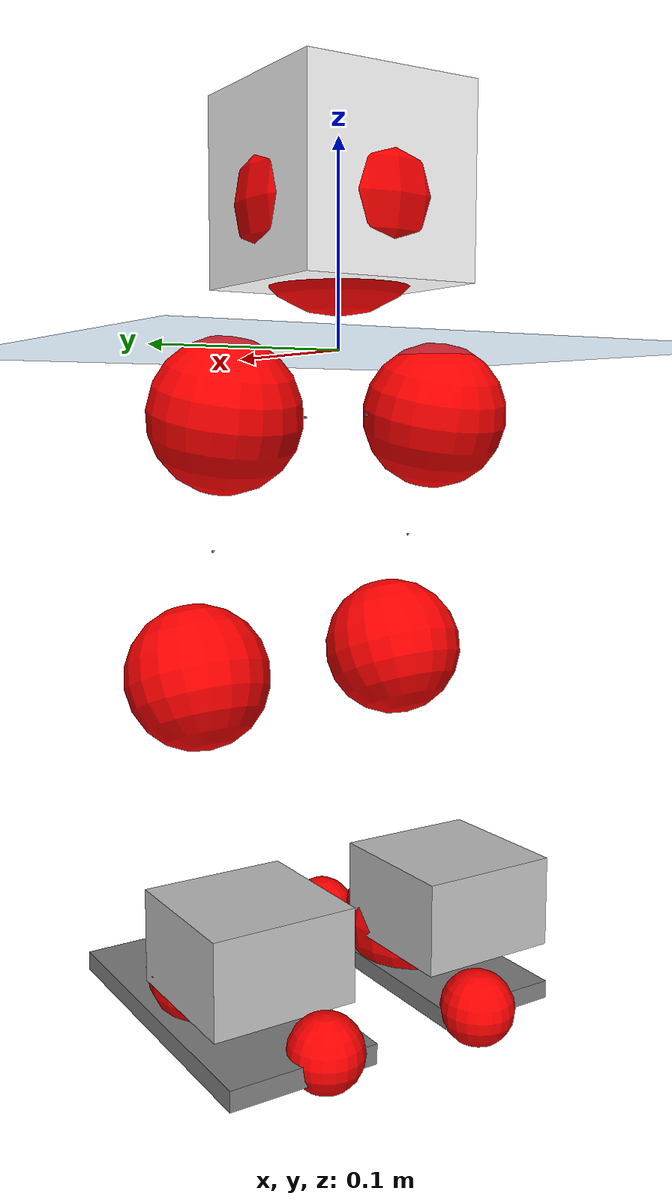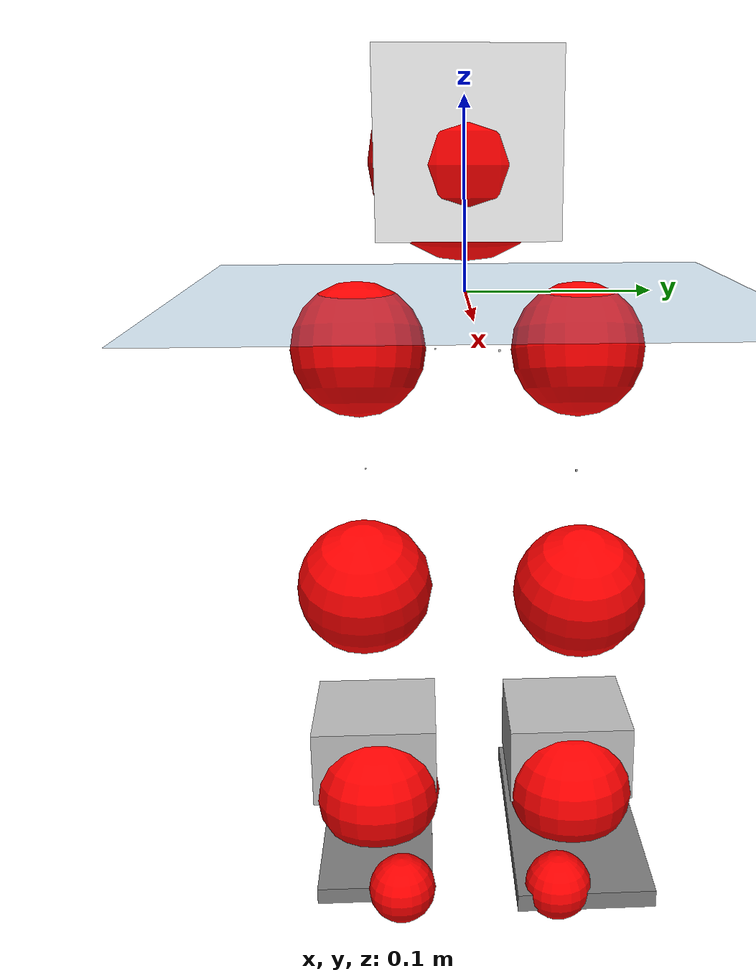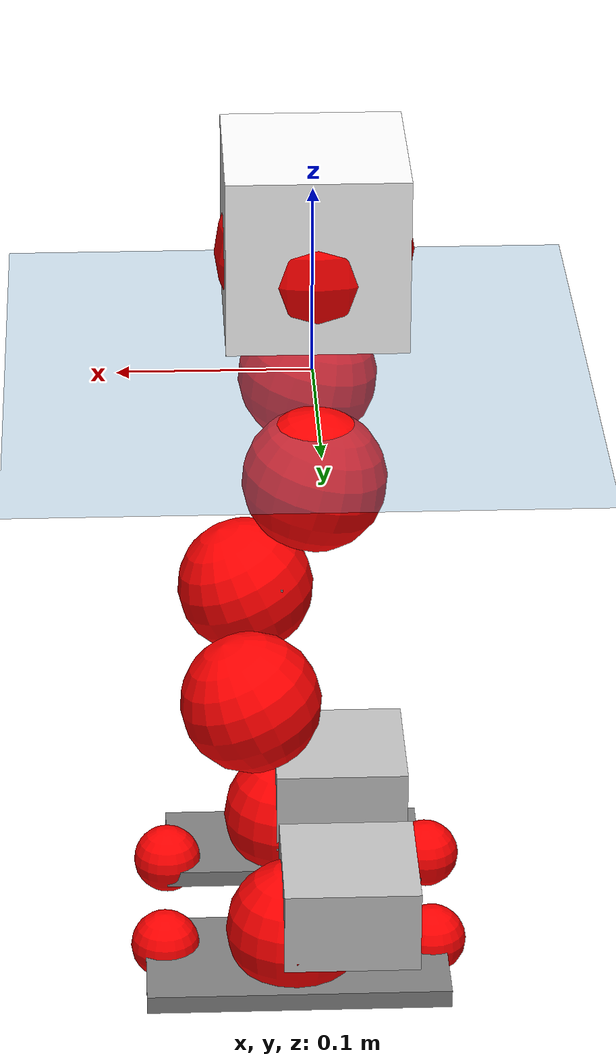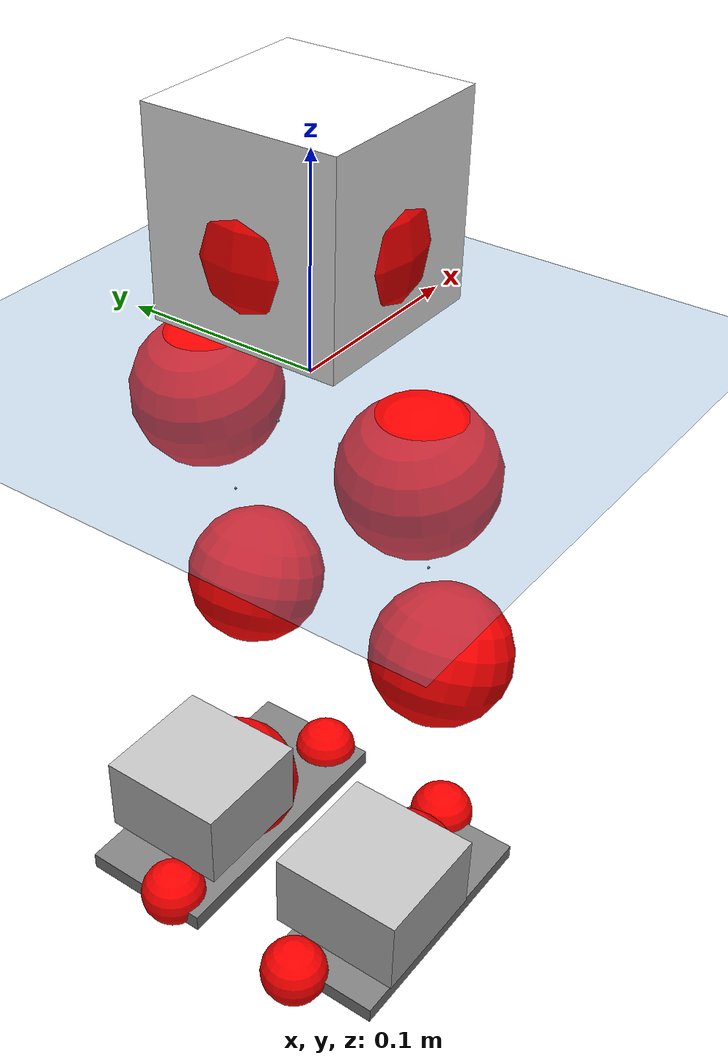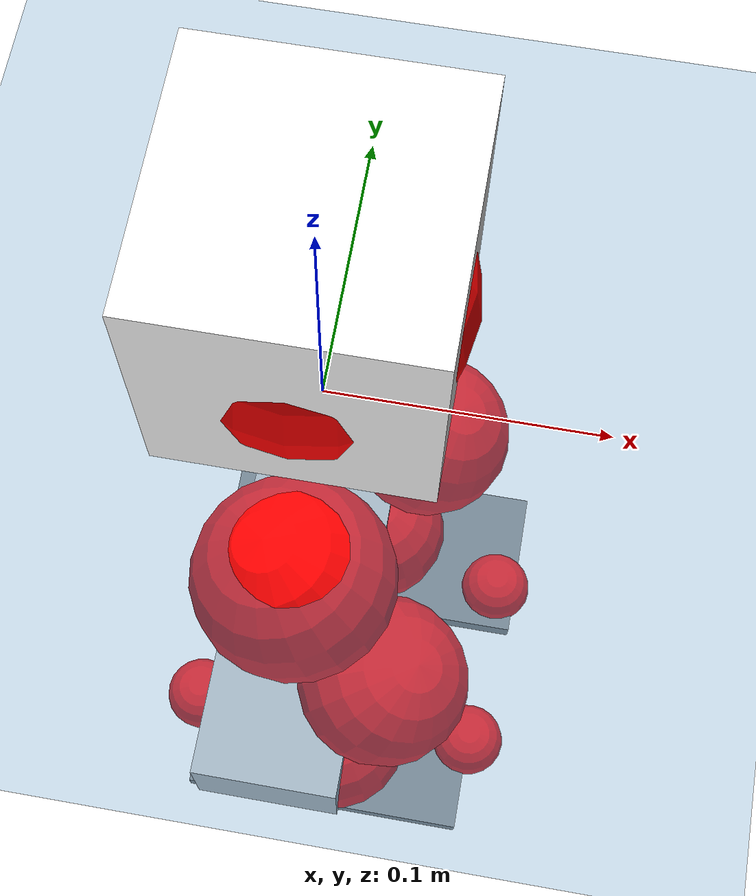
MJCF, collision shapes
<mujoco model="pi_12dof_release_v1">
  <compiler angle="radian" assetdir="assets" balanceinertia="true" inertiafromgeom="false"/>

  <option timestep="0.005" density="1.2" viscosity="2e-05"/>

  <size nkey="1"/>

  <visual>
    <quality shadowsize="8192"/>
    <map shadowclip="0.5"/>
  </visual>

  <default>
    <default class="/">
      <joint armature="0.01" damping="0.01" frictionloss="0.01"/>
      <geom contype="0" conaffinity="0" group="1" solref="-1000 -80"/>
      <site size="0.01 0.005 0.005" group="5"/>
      <general forcelimited="true" biastype="affine" gainprm="20" biasprm="0 -20 -0.5"/>
      <default class="foot">
        <geom size="0.0845 0.036 0.005" type="box" condim="6" group="4" priority="1" friction="0.9 0.2 0.2" solimp="0.015 1 0.005"/>
      </default>
      <default class="reward_collision_sphere">
        <geom group="5" rgba="1 0 0 1"/>
      </default>
    </default>
  </default>

  <asset>
    <texture type="skybox" colorspace="auto" name="//unnamed_texture_0" builtin="gradient" rgb1="0.95 0.95 0.95" rgb2="0.95 0.95 0.95" width="100" height="600"/>
    <texture type="2d" colorspace="auto" name="texplane" builtin="checker" rgb1="0.345 0.575 0.748" rgb2="0.345 0.575 0.748" markrgb="1 1 1" width="512" height="512"/>
    <material name="MatPlane" class="/" texture="texplane" texuniform="true" texrepeat="2 2" specular="0.9"/>
    <mesh name="baselink_1" class="/" file="baselink_1.STL"/>
    <mesh name="r_hip_pitch_link" class="/" file="r_hip_pitch_link.STL"/>
    <mesh name="r_hip_roll_link" class="/" file="r_hip_roll_link.STL"/>
    <mesh name="r_thigh_link" class="/" file="r_thigh_link.STL"/>
    <mesh name="r_calf_link" class="/" file="r_calf_link.STL"/>
    <mesh name="r_ankle_pitch_link" class="/" file="r_ankle_pitch_link.STL"/>
    <mesh name="r_ankle_roll_link" class="/" file="r_ankle_roll_link.STL"/>
    <mesh name="l_hip_pitch_link" class="/" file="l_hip_pitch_link.STL"/>
    <mesh name="l_hip_roll_link" class="/" file="l_hip_roll_link.STL"/>
    <mesh name="l_thigh_link" class="/" file="l_thigh_link.STL"/>
    <mesh name="l_calf_link" class="/" file="l_calf_link.STL"/>
    <mesh name="l_ankle_pitch_link" class="/" file="l_ankle_pitch_link.STL"/>
    <mesh name="l_ankle_roll_link" class="/" file="l_ankle_roll_link.STL"/>
  </asset>

  <worldbody>
    <geom name="floor" class="/" size="100 100 0.125" type="plane" group="0" material="MatPlane"/>
    <light name="toplight_shadow" class="/" pos="0 0 5" dir="0.0990148 0.0990148 -0.990148" type="directional" ambient="0.04 0.04 0.04" diffuse="0.55 0.55 0.55" specular="0.12 0.12 0.12"/>
    <light name="toplight_fill" class="/" pos="0 0 5" dir="0.0990148 0.0990148 -0.990148" type="directional" castshadow="false" ambient="0.04 0.04 0.04" diffuse="0.3 0.3 0.3" specular="0.08 0.08 0.08"/>
    <body name="trunk" pos="-0.000577415 0.000278572 0.000642705" quat="1 2.6972e-05 1.64342e-05 3.03836e-06">
      <inertial pos="0.00299177 -0.00135322 0.0388445" quat="0.699627 0.0095199 0.0109471 0.714361" mass="1.65866" diaginertia="0.0132428 0.0021695 0.00320879"/>
      <joint name="//unnamed_joint_0" type="free"/>
      <geom name="//unnamed_geom_1" class="/" type="mesh" density="0" rgba="1 1 1 1" mesh="baselink_1"/>
      <geom name="//unnamed_geom_2" class="/" size="0.0459345 0.0459345 0.0459345" pos="0 0 0.0756343" type="box" rgba="1 1 1 1"/>
      <geom name="//unnamed_geom_3" class="reward_collision_sphere" size="0.0505279" pos="0 0 0.06618"/>
      <site name="imu" class="/" pos="-0.00197154 -0.0119652 0.00512516" size="0.0091869"/>
      <camera name="track" class="/" pos="0 -1.50461 0" quat="0.707107 0.707107 0 0" mode="trackcom"/>
      <camera name="ego_camera" class="/" pos="0.0793751 0 0.170177" quat="-0.5 -0.5 0.5 0.5"/>
      <body name="r_hip_pitch_link" pos="0.000339582 -0.0168302 -0.0315248" quat="0.992249 0.000139461 -0.124262 -0.00102179">
        <inertial pos="0.00156005 -0.0425306 0.000266519" quat="-0.0180159 0.707242 -0.025503 0.706282" mass="0.294252" diaginertia="0.000147661 2.4274e-05 6.38497e-05"/>
        <joint name="r_hip_pitch_joint" class="/" pos="0 0 0" axis="-0.000904496 -0.999975 0.00697701" range="-1.75406 1.26244" armature="0.00941055" damping="0.0106594" frictionloss="0.0088004"/>
        <geom name="//unnamed_geom_4" class="/" type="mesh" density="0" rgba="0.75294 0.75294 0.75294 1" mesh="r_hip_pitch_link"/>
        <geom name="//unnamed_geom_5" class="/" size="0.000459345 0.000459345 0.000459345" type="box" rgba="0.75294 0.75294 0.75294 1"/>
        <body name="r_hip_roll_link" pos="0.000199397 -0.0417215 9.617e-05" quat="1 -4.84978e-05 0.000178928 2.88086e-05">
          <inertial pos="-0.00128463 -0.00225541 -0.0604562" quat="0.705454 -0.0828019 -0.0802149 0.699317" mass="0.302389" diaginertia="0.000445367 6.76297e-05 9.71327e-05"/>
          <joint name="r_hip_roll_joint" class="/" pos="0 0 0" axis="-0.999994 -0.0014532 -0.00319356" range="-0.111184 0.535389" armature="0.00866446" damping="0.0108463" frictionloss="0.00964208"/>
          <geom name="//unnamed_geom_6" class="/" type="mesh" density="0" rgba="0.75294 0.75294 0.75294 1" mesh="r_hip_roll_link"/>
          <geom name="//unnamed_geom_7" class="/" size="0.000459345 0.000459345 0.000459345" type="box" rgba="0.75294 0.75294 0.75294 1"/>
          <geom name="//unnamed_geom_8" class="reward_collision_sphere" size="0.0367476"/>
          <body name="r_thigh_link" pos="0.00203117 0.00285231 -0.0646355" quat="1 -8.62536e-06 1.27362e-05 -2.04548e-06">
            <inertial pos="0.000961908 0.00103392 -0.0447271" quat="0.737376 0.675482 0.000670629 -0.000470084" mass="0.089166" diaginertia="0.000166151 2.28687e-05 4.36533e-05"/>
            <joint name="r_thigh_joint" class="/" pos="0 0 0" axis="-0.00296064 0.0013296 -0.999995" stiffness="0.00224584" range="-0.318959 0.57554" armature="0.00913315" damping="0" frictionloss="0.00808257"/>
            <geom name="//unnamed_geom_9" class="/" type="mesh" density="0" rgba="0.75294 0.75294 0.75294 1" mesh="r_thigh_link"/>
            <geom name="//unnamed_geom_10" class="/" size="0.000459345 0.000459345 0.000459345" type="box" rgba="0.75294 0.75294 0.75294 1"/>
            <body name="r_calf_link" pos="-0.000643996 -0.00151247 -0.0645075" quat="0.947637 -1.69387e-05 0.319351 2.87062e-05">
              <inertial pos="0.000703844 -0.000815408 -0.066183" quat="0.999961 -0.00611882 -0.00568131 -0.00272613" mass="0.645866" diaginertia="0.00483241 0.000855124 0.000135147"/>
              <joint name="r_calf_joint" class="/" pos="0 0 0" axis="-0.00622368 -0.999981 0.000128897" range="-1.61254 0.649328" armature="0.00869548" damping="0.0108556" frictionloss="0.00929748"/>
              <geom name="//unnamed_geom_11" class="/" type="mesh" density="0" rgba="0.75294 0.75294 0.75294 1" mesh="r_calf_link"/>
              <geom name="//unnamed_geom_12" class="/" size="0.000459345 0.000459345 0.000459345" type="box" rgba="0.75294 0.75294 0.75294 1"/>
              <geom name="//unnamed_geom_13" class="reward_collision_sphere" size="0.0367476"/>
              <body name="r_ankle_pitch_link" pos="0.000679716 0.000782673 -0.13331" quat="0.980062 0.000517562 -0.198689 -3.66339e-05">
                <inertial pos="0.00535886 0.00271466 -0.00240692" quat="-0.00520091 0.712562 -0.00783078 0.701546" mass="0.138288" diaginertia="0.000421969 5.48188e-05 9.27823e-05"/>
                <joint name="r_ankle_pitch_joint" class="/" pos="0 0 0" axis="-0.00558844 -0.999983 0.00150164" range="-1.29352 0.547142" armature="0.00922019" damping="0.0101353" frictionloss="0.00992971"/>
                <geom name="//unnamed_geom_14" class="/" type="mesh" density="0" rgba="0.75294 0.75294 0.75294 1" mesh="r_ankle_pitch_link"/>
                <geom name="//unnamed_geom_15" class="/" size="0.0358289 0.0367476 0.0229672" type="box" rgba="0.75294 0.75294 0.75294 1"/>
                <body name="r_ankle_roll_link" pos="0.0800097 0.00163379 -0.00102337" quat="1 -1.20525e-05 -8.68875e-06 -3.77098e-05">
                  <inertial pos="-0.0253793 0.000306641 -0.0113461" quat="0.5582 0.430885 0.435685 0.5594" mass="0.385125" diaginertia="0.00143917 0.000248089 0.000202627"/>
                  <joint name="r_ankle_roll_joint" class="/" pos="0 0 0" axis="-0.999945 0.0100947 0.0030095" range="-0.147751 0.118818" armature="0.00823041" damping="0.0133292" frictionloss="0.00937428"/>
                  <geom name="//unnamed_geom_16" class="/" type="mesh" density="0" rgba="0.75294 0.75294 0.75294 1" mesh="r_ankle_roll_link"/>
                  <geom name="//unnamed_geom_17" class="/" type="mesh" rgba="0.75294 0.75294 0.75294 1" mesh="r_ankle_roll_link"/>
                  <geom name="right_foot" class="foot" size="0.0701431 0.0318193 0.00449421" pos="-0.053975 0 -0.0415988"/>
                  <geom name="//unnamed_geom_19" class="reward_collision_sphere" size="0.0367476" pos="-0.0529167 0 -0.0189086"/>
                  <geom name="//unnamed_geom_20" class="reward_collision_sphere" size="0.0183738" pos="0.015875 0.0150461 -0.0378171"/>
                  <geom name="//unnamed_geom_21" class="reward_collision_sphere" size="0.0183738" pos="-0.127 0.0150461 -0.0378171"/>
                  <site name="right_foot" class="foot" pos="-0.053975 0 -0.0415988" size="0.0091869"/>
                </body>
              </body>
            </body>
          </body>
        </body>
      </body>
      <body name="l_hip_pitch_link" pos="0.000942184 0.0182506 -0.0326978" quat="0.992195 0.000154853 -0.124697 0.000212045">
        <inertial pos="0.00119696 0.0398504 -0.00197401" quat="-0.0396827 0.706514 0.0289709 0.705991" mass="0.307568" diaginertia="0.000172813 2.5092e-05 7.61461e-05"/>
        <joint name="l_hip_pitch_joint" class="/" pos="0 0 0" axis="0.0025824 0.999991 -0.00321596" stiffness="0.000790217" range="-1.23071 1.76335" armature="0.00959512" damping="0.0141515" frictionloss="0.00909642"/>
        <geom name="//unnamed_geom_22" class="/" type="mesh" density="0" rgba="0.75294 0.75294 0.75294 1" mesh="l_hip_pitch_link"/>
        <geom name="//unnamed_geom_23" class="/" size="0.000459345 0.000459345 0.000459345" type="box" rgba="0.75294 0.75294 0.75294 1"/>
        <body name="l_hip_roll_link" pos="0.00141184 0.0428547 0.000308205" quat="1 -9.63339e-05 -8.00342e-05 -4.4822e-05">
          <inertial pos="-0.00294667 -0.000549539 -0.0601905" quat="0.693754 -0.0736677 -0.0744772 0.712553" mass="0.297949" diaginertia="0.000425759 6.59786e-05 9.36186e-05"/>
          <joint name="l_hip_roll_joint" class="/" pos="0 0 0" axis="-1 -4.77917e-05 0.000123824" range="-0.54263 0.137615" armature="0.00940817" damping="0" frictionloss="0.00916233"/>
          <geom name="//unnamed_geom_24" class="/" type="mesh" density="0" rgba="0.75294 0.75294 0.75294 1" mesh="l_hip_roll_link"/>
          <geom name="//unnamed_geom_25" class="/" size="0.000459345 0.000459345 0.000459345" type="box" rgba="0.75294 0.75294 0.75294 1"/>
          <geom name="//unnamed_geom_26" class="reward_collision_sphere" size="0.0367476"/>
          <body name="l_thigh_link" pos="-0.000151969 -0.00147467 -0.0663991" quat="1 3.72664e-05 3.3119e-05 4.47637e-05">
            <inertial pos="1.97421e-05 -0.00149528 -0.0447334" quat="0.673065 0.739567 -0.000539629 0.00492532" mass="0.0866437" diaginertia="0.000165723 2.25618e-05 4.43708e-05"/>
            <joint name="l_thigh_joint" class="/" pos="0 0 0" axis="9.72976e-05 0.000115915 -1" range="-0.604923 0.307773" armature="0.00912443" damping="0.00378129" frictionloss="0.00899136"/>
            <geom name="//unnamed_geom_27" class="/" type="mesh" density="0" rgba="0.75294 0.75294 0.75294 1" mesh="l_thigh_link"/>
            <geom name="//unnamed_geom_28" class="/" size="0.000459345 0.000459345 0.000459345" type="box" rgba="0.75294 0.75294 0.75294 1"/>
            <body name="l_calf_link" pos="-0.000420522 0.00099686 -0.0664257" quat="0.947656 0.000367744 0.319294 -0.000236268">
              <inertial pos="0.000190471 0.00372724 -0.0672511" quat="0.999983 0.00322813 -0.000366077 0.00474605" mass="0.605917" diaginertia="0.00453959 0.000821178 0.000127932"/>
              <joint name="l_calf_joint" class="/" pos="0 0 0" axis="0.000175897 1 0.000713204" stiffness="0.00271647" range="-0.603111 1.69063" armature="0.00921462" damping="0.00584942" frictionloss="0.00872239"/>
              <geom name="//unnamed_geom_29" class="/" type="mesh" density="0" rgba="0.75294 0.75294 0.75294 1" mesh="l_calf_link"/>
              <geom name="//unnamed_geom_30" class="/" size="0.000459345 0.000459345 0.000459345" type="box" rgba="0.75294 0.75294 0.75294 1"/>
              <geom name="//unnamed_geom_31" class="reward_collision_sphere" size="0.0367476"/>
              <body name="l_ankle_pitch_link" pos="-0.00110325 0.000509325 -0.130451" quat="0.980071 -5.20707e-05 -0.198645 4.14136e-07">
                <inertial pos="0.00511264 -0.000279901 -0.00020491" quat="-0.00246823 0.707265 0.00201585 0.706941" mass="0.132026" diaginertia="0.000397536 5.22119e-05 9.03763e-05"/>
                <joint name="l_ankle_pitch_joint" class="/" pos="0 0 0" axis="-6.81436e-05 1 -0.000963475" range="-0.544468 1.29999" armature="0.00869296" damping="0.0068568" frictionloss="0.00897444"/>
                <geom name="//unnamed_geom_32" class="/" type="mesh" density="0" rgba="0.75294 0.75294 0.75294 1" mesh="l_ankle_pitch_link"/>
                <geom name="//unnamed_geom_33" class="/" size="0.0358289 0.0367476 0.0229672" type="box" rgba="0.75294 0.75294 0.75294 1"/>
                <body name="l_ankle_roll_link" pos="0.0817187 0.000105875 0.000532733" quat="1 0.000122963 9.69321e-05 0.000136931">
                  <inertial pos="-0.0264701 -0.000352416 -0.0138012" quat="0.560579 0.430098 0.433825 0.559073" mass="0.396504" diaginertia="0.0015043 0.000245959 0.00021432"/>
                  <joint name="l_ankle_roll_joint" class="/" pos="0 0 0" axis="-0.999993 0.00248585 -0.00266723" range="-0.16991 0.153291" armature="0.00953028" damping="0.00713668" frictionloss="0.00915764"/>
                  <geom name="//unnamed_geom_34" class="/" type="mesh" density="0" rgba="0.75294 0.75294 0.75294 1" mesh="l_ankle_roll_link"/>
                  <geom name="//unnamed_geom_35" class="/" type="mesh" rgba="0.75294 0.75294 0.75294 1" mesh="l_ankle_roll_link"/>
                  <geom name="left_foot" class="foot" size="0.0803818 0.0380171 0.00493919" pos="-0.053975 0 -0.0415988"/>
                  <geom name="//unnamed_geom_37" class="reward_collision_sphere" size="0.0367476" pos="-0.0529167 0 -0.0189086"/>
                  <geom name="//unnamed_geom_38" class="reward_collision_sphere" size="0.0183738" pos="0.015875 -0.0150461 -0.0378171"/>
                  <geom name="//unnamed_geom_39" class="reward_collision_sphere" size="0.0183738" pos="-0.127 -0.0150461 -0.0378171"/>
                  <site name="left_foot" class="foot" pos="-0.053975 0 -0.0415988" size="0.0091869"/>
                </body>
              </body>
            </body>
          </body>
        </body>
      </body>
    </body>
  </worldbody>

  <contact>
    <pair class="/" geom1="floor" geom2="right_foot" name="//unnamed_contact_1"/>
    <pair class="/" geom1="floor" geom2="left_foot" name="//unnamed_contact_0"/>
  </contact>

  <actuator>
    <general name="r_hip_pitch_joint" class="/" joint="r_hip_pitch_joint" forcerange="-19.3833 19.3833" gainprm="18.5896" biasprm="0 -18.5896 -0.473523"/>
    <general name="r_hip_roll_joint" class="/" joint="r_hip_roll_joint" forcerange="-18.0684 18.0684" gainprm="18.5896" biasprm="0 -18.5896 -0.473523"/>
    <general name="r_thigh_joint" class="/" joint="r_thigh_joint" forcerange="-18.9445 18.9445" gainprm="18.5896" biasprm="0 -18.5896 -0.473523"/>
    <general name="r_calf_joint" class="/" joint="r_calf_joint" forcerange="-19.9938 19.9938" gainprm="18.5896" biasprm="0 -18.5896 -0.473523"/>
    <general name="r_ankle_pitch_joint" class="/" joint="r_ankle_pitch_joint" forcerange="-18.5297 18.5297" gainprm="18.5896" biasprm="0 -18.5896 -0.473523"/>
    <general name="r_ankle_roll_joint" class="/" joint="r_ankle_roll_joint" forcerange="-18.9226 18.9226" gainprm="18.5896" biasprm="0 -18.5896 -0.473523"/>
    <general name="l_hip_pitch_joint" class="/" joint="l_hip_pitch_joint" forcerange="-19.1206 19.1206" gainprm="18.5896" biasprm="0 -18.5896 -0.473523"/>
    <general name="l_hip_roll_joint" class="/" joint="l_hip_roll_joint" forcerange="-20.3848 20.3848" gainprm="18.5896" biasprm="0 -18.5896 -0.473523"/>
    <general name="l_thigh_joint" class="/" joint="l_thigh_joint" forcerange="-17.914 17.914" gainprm="18.5896" biasprm="0 -18.5896 -0.473523"/>
    <general name="l_calf_joint" class="/" joint="l_calf_joint" forcerange="-19.693 19.693" gainprm="18.5896" biasprm="0 -18.5896 -0.473523"/>
    <general name="l_ankle_pitch_joint" class="/" joint="l_ankle_pitch_joint" forcerange="-19.1878 19.1878" gainprm="18.5896" biasprm="0 -18.5896 -0.473523"/>
    <general name="l_ankle_roll_joint" class="/" joint="l_ankle_roll_joint" forcerange="-21.0469 21.0469" gainprm="18.5896" biasprm="0 -18.5896 -0.473523"/>
  </actuator>

  <sensor>
    <gyro site="imu" name="imu_angular_velocity"/>
    <velocimeter site="imu" name="imu_linear_velocity"/>
    <framelinvel objtype="site" objname="left_foot" name="left_foot_global_linear_velocity"/>
    <framelinvel objtype="site" objname="right_foot" name="right_foot_global_linear_velocity"/>
  </sensor>

  <keyframe>
    <key name="home" qpos="0 0 0.291 1 0 0 0 0.4 0 0 -0.8 0.4 0 -0.4 0 0 0.8 -0.4 0"/>
  </keyframe>
</mujoco>
